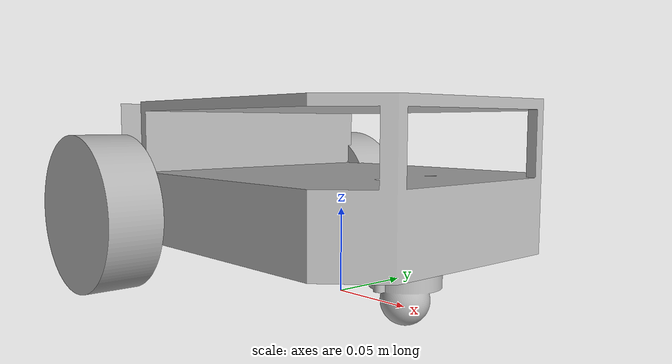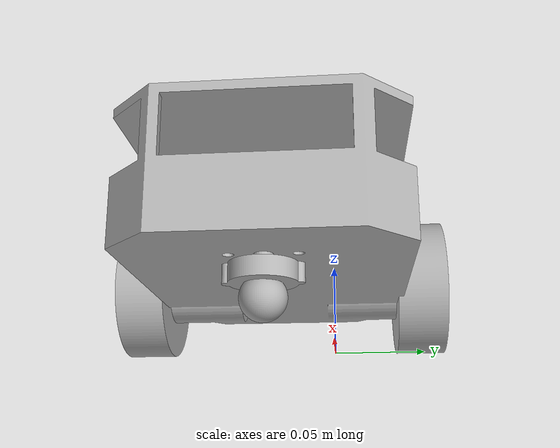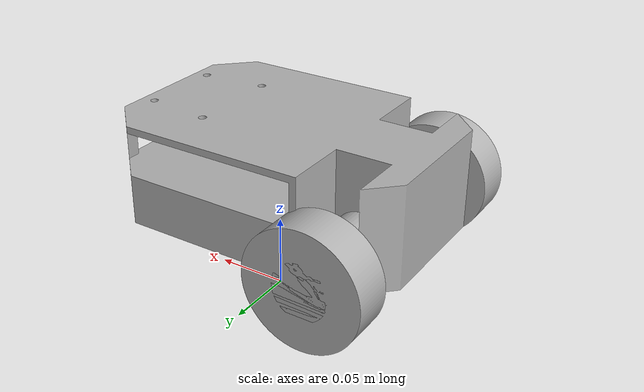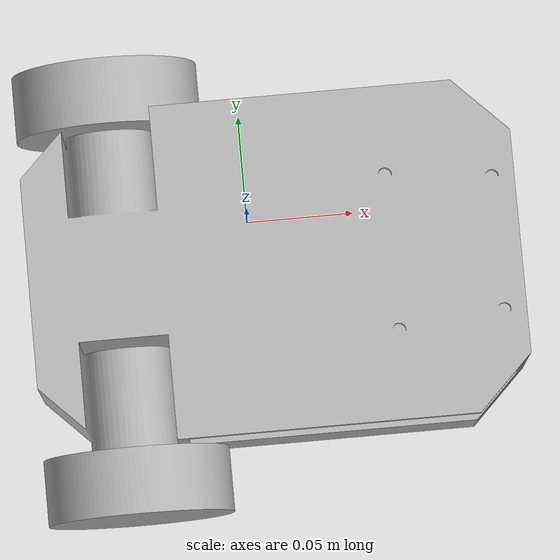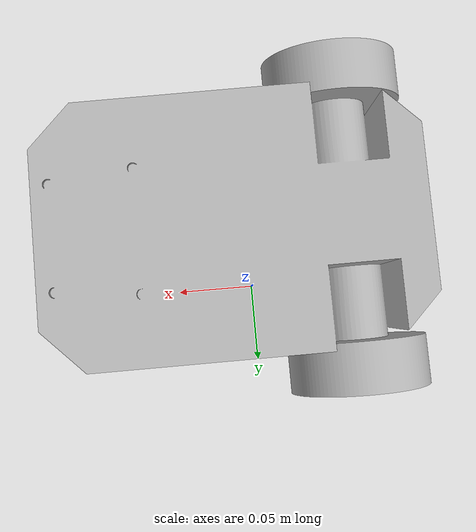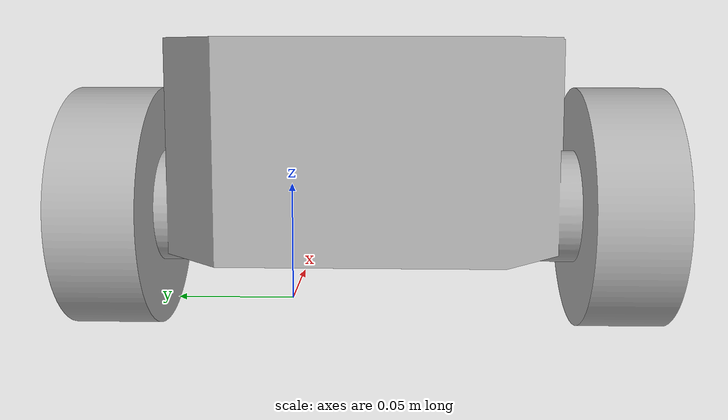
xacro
<?xml version="1.0" ?>
<robot name="sim" xmlns:xacro="http://www.ros.org/wiki/xacro">

<xacro:include filename="$(find sim_description)/urdf/materials.xacro" />
<xacro:include filename="$(find sim_description)/urdf/sim.trans" />
<xacro:include filename="$(find sim_description)/urdf/sim.gazebo" />
<link name="base_link">
  <inertial>
    <origin xyz="0.00031093555448540386 -0.03322594412181666 0.06386861640770332" rpy="0 0 0"/>
    <mass value="1.5275246610432136"/>
    <inertia ixx="0.003577" iyy="0.006808" izz="0.009088" ixy="-0.0" iyz="0.0" ixz="0.000204"/>
  </inertial>
  <visual>
    <origin xyz="0 0 0" rpy="0 0 0"/>
    <geometry>
      <mesh filename="file://$(find sim_description)/meshes/base_link.stl" scale="0.001 0.001 0.001"/>
    </geometry>
    <material name="silver"/>
  </visual>
  <collision>
    <origin xyz="0 0 0" rpy="0 0 0"/>
    <geometry>
      <mesh filename="file://$(find sim_description)/meshes/base_link.stl" scale="0.001 0.001 0.001"/>
    </geometry>
  </collision>
</link>

<link name="wheel_l_1">
  <inertial>
    <origin xyz="7.632783294297951e-17 -0.014626564692252084 -5.587818583535631e-08" rpy="0 0 0"/>
    <mass value="0.13630585125762715"/>
    <inertia ixx="8.4e-05" iyy="0.000147" izz="8.4e-05" ixy="-0.0" iyz="-0.0" ixz="-0.0"/>
  </inertial>
  <visual>
    <origin xyz="0.06 -0.068774 -0.051226" rpy="0 0 0"/>
    <geometry>
      <mesh filename="file://$(find sim_description)/meshes/wheel_l_1.stl" scale="0.001 0.001 0.001"/>
    </geometry>
    <material name="silver"/>
  </visual>
  <collision>
    <origin xyz="0.06 -0.068774 -0.051226" rpy="0 0 0"/>
    <geometry>
      <mesh filename="file://$(find sim_description)/meshes/wheel_l_1.stl" scale="0.001 0.001 0.001"/>
    </geometry>
  </collision>
</link>

<link name="wheel_r_1">
  <inertial>
    <origin xyz="6.245004513516506e-17 0.011626676448629455 -5.587818592556193e-08" rpy="0 0 0"/>
    <mass value="0.13630585125762715"/>
    <inertia ixx="8.4e-05" iyy="0.000147" izz="8.4e-05" ixy="-0.0" iyz="0.0" ixz="0.0"/>
  </inertial>
  <visual>
    <origin xyz="0.06 0.135226 -0.051226" rpy="0 0 0"/>
    <geometry>
      <mesh filename="file://$(find sim_description)/meshes/wheel_r_1.stl" scale="0.001 0.001 0.001"/>
    </geometry>
    <material name="silver"/>
  </visual>
  <collision>
    <origin xyz="0.06 0.135226 -0.051226" rpy="0 0 0"/>
    <geometry>
      <mesh filename="file://$(find sim_description)/meshes/wheel_r_1.stl" scale="0.001 0.001 0.001"/>
    </geometry>
  </collision>
</link>

<link name="caster_1">
  <inertial>
    <origin xyz="-1.4935275238769918e-13 5.58781886941806e-08 -0.010341738892562131" rpy="0 0 0"/>
    <mass value="0.01594811641948032"/>
    <inertia ixx="2e-06" iyy="2e-06" izz="2e-06" ixy="-0.0" iyz="-0.0" ixz="-0.0"/>
  </inertial>
  <visual>
    <origin xyz="-0.08 0.033226 -0.032226" rpy="0 0 0"/>
    <geometry>
      <mesh filename="file://$(find sim_description)/meshes/caster_1.stl" scale="0.001 0.001 0.001"/>
    </geometry>
    <material name="silver"/>
  </visual>
  <collision>
    <origin xyz="-0.08 0.033226 -0.032226" rpy="0 0 0"/>
    <geometry>
      <mesh filename="file://$(find sim_description)/meshes/caster_1.stl" scale="0.001 0.001 0.001"/>
    </geometry>
  </collision>
</link>

<joint name="wheel_l_to_base_link" type="continuous">
  <origin xyz="-0.06 0.068774 0.051226" rpy="0 0 0"/>
  <parent link="base_link"/>
  <child link="wheel_l_1"/>
  <axis xyz="-0.0 -1.0 -0.0"/>
</joint>

<joint name="wheel_r_to_base_link" type="continuous">
  <origin xyz="-0.06 -0.135226 0.051226" rpy="0 0 0"/>
  <parent link="base_link"/>
  <child link="wheel_r_1"/>
  <axis xyz="0.0 -1.0 -0.0"/>
</joint>

<joint name="caster_to_base_link" type="fixed">
  <origin xyz="0.08 -0.033226 0.032226" rpy="0 0 0"/>
  <parent link="base_link"/>
  <child link="caster_1"/>
</joint>

</robot>

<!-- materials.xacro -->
<robot name="sim" xmlns:xacro="http://www.ros.org/wiki/xacro" >

<material name="silver">
  <color rgba="0.700 0.700 0.700 1.000"/>
</material>

</robot>

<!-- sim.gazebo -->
<robot name="sim" xmlns:xacro="http://www.ros.org/wiki/xacro" >

<xacro:property name="body_color" value="Gazebo/Silver" />

<gazebo>
  <plugin name="control" filename="libgazebo_ros_control.so"/>
</gazebo>
<gazebo reference="base_link">
  <material>${body_color}</material>
  <mu1>0.2</mu1>
  <mu2>0.2</mu2>
  <self_collide>true</self_collide>
  <gravity>true</gravity>
</gazebo>

<gazebo reference="wheel_l_1">
  <material>${body_color}</material>
  <mu1>0.2</mu1>
  <mu2>0.2</mu2>
  <self_collide>true</self_collide>
</gazebo>

<gazebo reference="wheel_r_1">
  <material>${body_color}</material>
  <mu1>0.2</mu1>
  <mu2>0.2</mu2>
  <self_collide>true</self_collide>
</gazebo>

<gazebo reference="caster_1">
  <material>${body_color}</material>
  <mu1>0.2</mu1>
  <mu2>0.2</mu2>
  <self_collide>true</self_collide>
</gazebo>

</robot>
